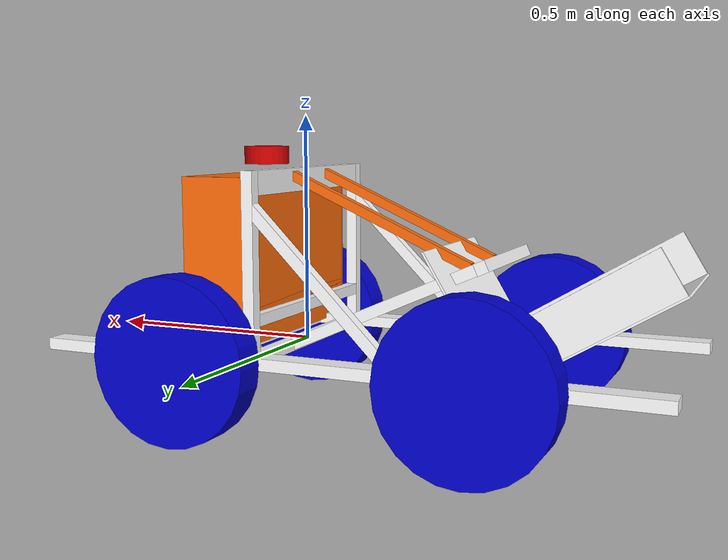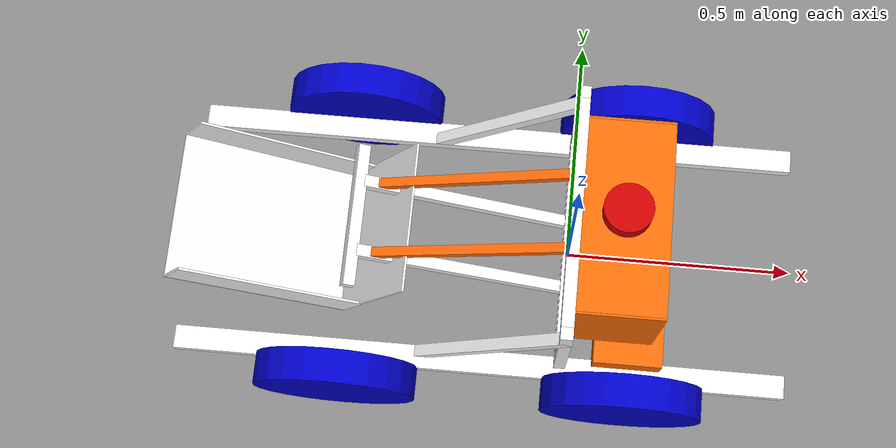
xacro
<?xml version="1.0"?>
<!-- Basic differential drive mobile base -->
<robot xmlns:xacro="http://www.ros.org/wiki/xacro" name="diffdrive_robot">
  <xacro:arg name="prefix" default="" />
  <xacro:arg name="sim_mode" default="false"/>
  <xacro:include filename="$(find ros_phoenix)/urdf/robot_core.urdf.xacro" />

  <!-- Import Rviz colors -->
  <xacro:include filename="$(find ros_phoenix)/urdf/diffbot.materials.xacro" />

  <!-- Import diffbot ros2_control description -->
  <xacro:include filename="$(find ros_phoenix)/ros2_control/diffbot.ros2_control.xacro" />

  <xacro:diffbot prefix="$(arg prefix)" />

  <xacro:diffbot_ros2_control
    name="DiffBot" prefix="$(arg prefix)"/>

</robot>

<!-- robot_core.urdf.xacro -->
<robot xmlns:xacro="http://www.ros.org/wiki/xacro" >
    <!-- the copy of robot_core_1 urdf -->
    <xacro:macro name="diffbot" params="prefix">
    <xacro:include filename="inertial_macros.xacro"/>
    <xacro:include filename="depth_camera.xacro"/>
    <xacro:include filename="lidar.xacro"/>

    <xacro:property name="chassis_length" value="1.3501" />
    <xacro:property name="chassis_to_base_link" value="0.4954" />
    <xacro:property name="profile_height" value="0.0254" />
    <xacro:property name="profile_width" value="0.0254" />
    <xacro:property name="tower_height" value="0.388" />

    <xacro:property name="wheel_radius" value="0.1778" />
    <xacro:property name="wheel_thickness" value="0.07" />
    <xacro:property name="wheel_mass" value="56" />

    <xacro:property name="front_wheel_offset_x" value="0.14" />
    <xacro:property name="back_wheel_offset_x" value="0.49" />

    <xacro:property name="wheel_offset_y" value="0.3182" />
    <xacro:property name="wheel_offset_z" value="0.1778" />
    <xacro:property name="caster_wheel_mass" value="56"/>

    <xacro:property name="double_prof_mass" value="0.235398773"/>
    <xacro:property name="single_prof_mass" value="0.147601476"/>
    <xacro:property name="spoke_mass" value="1.6"/>
    <xacro:property name="motorgearbox_mass" value="136"/>
    <xacro:property name="scoop_mass" value="196"/>
    <xacro:property name="tiltingact_mass" value="38"/>
    <xacro:property name="liftingact_mass" value="44"/>

    <!-- BASE LINK -->

    <link name="base_link">

    </link>

    <!-- BASE_FOOTPRINT LINK -->

    <joint name="base_footprint_joint" type="fixed">
    	<parent link="base_link"/>
    	<child link="base_footprint"/>
    	<origin xyz="0 0 0" rpy="0 0 0"/>
    </joint>

    <link name="base_footprint">
    </link>

    <joint name="imu_joint" type="fixed">
        <parent link="base_link" />
        <child link="imu_link" />
        <origin xyz="0.1919 0 ${0.2016+0.03}" rpy="0 0 0" />
    </joint>

    <link name="imu_link">
        <visual>
            <geometry>
                <box size="0.03 0.02 0.01"/>
            </geometry>
            <material name="orange"/>
        </visual>
    </link>

    <!-- CHASSIS LONG BASE LEFT -->
    <!-- Needs to be 1.35m long, to the left by 0.2604m -->

    <joint name="chassis_base_left" type="fixed">
        <parent link="base_link"/>
        <child link="chassis_base_left"/>
        <origin xyz="${chassis_to_base_link} -0.2604 0"/>
    </joint>

    <link name="chassis_base_left">
        <visual>
            <origin xyz="${-chassis_length/2} 0 0"/>
            <geometry>
                <box size="${chassis_length} 0.0508 ${profile_height}"/>
            </geometry>
            <material name="white"/>
        </visual>
        <collision>
            <origin xyz="${-chassis_length/2} 0 0"/>
            <geometry>
                <box size="${chassis_length} 0.0508 ${profile_height}"/>
            </geometry>
        </collision>
        <xacro:inertial_box mass="${double_prof_mass*chassis_length*100}" x="${-chassis_length}" y="0.0508" z="${profile_height}">
            <origin xyz="${chassis_length/2} 0 0" rpy="0 0 0"/>
        </xacro:inertial_box>
    </link>

    <gazebo reference="chassis_base_left">
        <material>Gazebo/White</material>
    </gazebo>

    <!-- CHASSIS LONG BASE RIGHT -->
    <!-- Needs to be 1.35m long, to the left by  -->

    <joint name="chassis_base_right" type="fixed">
        <parent link="base_link"/>
        <child link="chassis_base_right"/>
        <origin xyz="${chassis_to_base_link} 0.2604 0"/>
    </joint>

    <link name="chassis_base_right">
        <visual>
            <origin xyz="${-chassis_length/2} 0 0"/>
            <geometry>
                <box size="${chassis_length} 0.0508 ${profile_height}"/>
            </geometry>
            <material name="white"/>
        </visual>
        <collision>
            <origin xyz="${-chassis_length/2} 0 0"/>
            <geometry>
                <box size="${chassis_length} 0.0508 ${profile_height}"/>
            </geometry>
        </collision>
        <xacro:inertial_box mass="${double_prof_mass*chassis_length*100}" x="${-chassis_length}" y="0.0508" z="${profile_height}">
            <origin xyz="${chassis_length/2} 0 0" rpy="0 0 0"/>
        </xacro:inertial_box>
    </link>

    <gazebo reference="chassis_base_right">
        <material>Gazebo/White</material>
    </gazebo>

    <!-- TOWER BASE -->

    <joint name="tower_base_" type="fixed">
        <parent link="base_link"/>
        <child link="tower_base"/>
        <origin xyz="0 0 0"/>
    </joint>

    <link name="tower_base">
        <visual>
            <origin xyz="0 0 0"/>
            <geometry>
                <box size="${profile_width} 0.4702 ${profile_height}"/>
            </geometry>
            <material name="white"/>
        </visual>
        <collision>
            <origin xyz="0 0 0"/>
            <geometry>
                <box size="${profile_width} 0.4702 ${profile_height}"/>
            </geometry>
        </collision>
        <xacro:inertial_box mass="${single_prof_mass*47.02}" x="${profile_width}" y="0.4702" z="${profile_height}">
            <origin xyz="0 0 0" rpy="0 0 0"/>
        </xacro:inertial_box>
    </link>

    <gazebo reference="tower_base">
        <material>Gazebo/White</material>
    </gazebo>

    <!-- TOWER MIDDLE -->

    <joint name="tower_middle_" type="fixed">
        <parent link="base_link"/>
        <child link="tower_middle"/>
        <origin xyz="0 0 0.08"/>
    </joint>

    <link name="tower_middle">
        <visual>
            <origin xyz="0 0 0"/>
            <geometry>
                <box size="${profile_width} 0.4702 ${profile_height}"/>
            </geometry>
            <material name="white"/>
        </visual>
        <collision>
            <origin xyz="0 0 0"/>
            <geometry>
                <box size="${profile_width} 0.4702 ${profile_height}"/>
            </geometry>
        </collision>
        <xacro:inertial_box mass="${single_prof_mass*47.02}" x="${profile_width}" y="0.4702" z="${profile_height}">
            <origin xyz="0 0 0" rpy="0 0 0"/>
        </xacro:inertial_box>
    </link>

    <gazebo reference="tower_middle">
        <material>Gazebo/White</material>
    </gazebo>

    <!-- TOWER HEIGHT LEFT -->
    <!-- Needs to be 0.510m tall -->

    <joint name="tower_up_left" type="fixed">
        <parent link="base_link"/>
        <child link="tower_up_left"/>
        <origin xyz="0 -0.2478 0"/>
    </joint>

    <link name="tower_up_left">
        <visual>
            <origin xyz="0 0 ${tower_height/2}"/>
            <geometry>
                <box size="${profile_width} ${profile_width} ${tower_height}"/>
            </geometry>
            <material name="white"/>
        </visual>
        <collision>
            <origin xyz="0 0 ${tower_height/2}"/>
            <geometry>
                <box size="${profile_width} ${profile_width} ${tower_height}"/>
            </geometry>
        </collision>
        <xacro:inertial_box mass="${single_prof_mass*tower_height*100}" x="${profile_width}" y="${profile_width}" z="${tower_height}">
            <origin xyz="0 0 ${tower_height/2}" rpy="0 0 0"/>
        </xacro:inertial_box>
    </link>

    <gazebo reference="tower_up_left">
        <material>Gazebo/White</material>
    </gazebo>

    <!-- TOWER HEIGHT RIGHT-->
    <!-- Needs to be 0.510m tall -->

    <joint name="tower_up_right" type="fixed">
        <parent link="base_link"/>
        <child link="tower_up_right"/>
        <origin xyz="0 0.2478 0"/>
    </joint>

    <link name="tower_up_right">
        <visual>
            <origin xyz="0 0 ${tower_height/2}"/>
            <geometry>
                <box size="${profile_width} ${profile_width} ${tower_height}"/>
            </geometry>
            <material name="white"/>
        </visual>
        <collision>
            <origin xyz="0 0 ${tower_height/2}"/>
            <geometry>
                <box size="${profile_width} ${profile_width} ${tower_height}"/>
            </geometry>
        </collision>
        <xacro:inertial_box mass="${single_prof_mass*tower_height*100}" x="${profile_width}" y="${profile_width}" z="${tower_height}">
            <origin xyz="0 0 ${tower_height/2}" rpy="0 0 0"/>
        </xacro:inertial_box>
    </link>

    <gazebo reference="tower_up_right">
        <material>Gazebo/White</material>
    </gazebo>

    <!-- TOWER TOP -->
    <!-- Needs to be 0.510m tall -->

    <joint name="tower_top" type="fixed">
        <parent link="base_link"/>
        <child link="tower_top"/>
        <origin xyz="0 0 ${tower_height-profile_width}"/>
    </joint>

    <link name="tower_top">
        <visual>
            <origin xyz="0 0 0"/>
            <geometry>
                <box size="${profile_width} 0.4702 ${profile_height*2}"/>
            </geometry>
            <material name="white"/>
        </visual>
        <collision>
            <origin xyz="0 0 0"/>
            <geometry>
                <box size="${profile_width} 0.4702 ${profile_height*2}"/>
            </geometry>
        </collision>
        <xacro:inertial_box mass="${double_prof_mass*0.4702*100}" x="${profile_width}" y="0.4702" z="${profile_height*2}">
            <origin xyz="0 0 0" rpy="0 0 0"/>
        </xacro:inertial_box>
    </link>

    <!-- TOWER SUPPORT LEFT -->

    <joint name="tower_support_left" type="fixed">
        <parent link="base_link"/>
        <child link="tower_support_left"/>
        <origin xyz="-0.15635 -0.2478 0.160" rpy="0 ${-pi/4} 0"/>
        <axis xyz="1 0 0"/>
    </joint>

    <link name="tower_support_left">
        <visual>
            <origin xyz="0 0 0"/>
            <geometry>
                <box size="0.4572 ${profile_width} ${profile_height}"/>
            </geometry>
            <material name="white"/>
        </visual>
        <collision>
            <origin xyz="0 0 0"/>
            <geometry>
                <box size="0.4572 ${profile_width} ${profile_height}"/>
            </geometry>
        </collision>
        <xacro:inertial_box mass="${single_prof_mass*0.4572*100}" x="0.4572" y="${profile_width}" z="${profile_height}">
            <origin xyz="0 0 0" rpy="0 0 0"/>
        </xacro:inertial_box>
    </link>

    <gazebo reference="tower_support_left">
        <material>Gazebo/White</material>
    </gazebo>

    <!-- TOWER SUPPORT RIGHT -->

    <joint name="tower_support_right" type="fixed">
        <parent link="base_link"/>
        <child link="tower_support_right"/>
        <origin xyz="-0.15635 0.2478 0.160" rpy="0 ${-pi/4} 0"/>
        <axis xyz="1 0 0"/>
    </joint>

    <link name="tower_support_right">
        <visual>
            <origin xyz="0 0 0"/>
            <geometry>
                <box size="0.4572 ${profile_width} ${profile_height}"/>
            </geometry>
            <material name="white"/>
        </visual>
        <collision>
            <origin xyz="0 0 0"/>
            <geometry>
                <box size="0.4572 ${profile_width} ${profile_height}"/>
            </geometry>
        </collision>
        <xacro:inertial_box mass="${single_prof_mass*0.4572*100}" x="0.4572" y="${profile_width}" z="${profile_height}">
            <origin xyz="0 0 0" rpy="0 0 0"/>
        </xacro:inertial_box>
    </link>

    <gazebo reference="tower_support_right">
        <material>Gazebo/White</material>
    </gazebo>

    <!-- MOTOR BASE FRONT -->

    <joint name="motor_base_front" type="fixed">
        <parent link="base_link"/>
        <child link="motor_base_front"/>
        <origin xyz="0.1 0 0"/>
    </joint>

    <link name="motor_base_front">
        <visual>
            <origin xyz="0 0 0"/>
            <geometry>
                <box size="${profile_width} 0.4702 ${profile_height}"/>
            </geometry>
            <material name="white"/>
        </visual>
        <collision>
            <origin xyz="0 0 0"/>
            <geometry>
                <box size="${profile_width} 0.4702 ${profile_height}"/>
            </geometry>
        </collision>
        <xacro:inertial_box mass="${single_prof_mass*0.4702*100}" x="${profile_width}" y="0.4702" z="${profile_height}">
            <origin xyz="0 0 0" rpy="0 0 0"/>
        </xacro:inertial_box>
    </link>

    <gazebo reference="motor_base_front">
        <material>Gazebo/White</material>
    </gazebo>

    <!-- MOTOR BASE BACK -->

    <joint name="motor_base_back" type="fixed">
        <parent link="base_link"/>
        <child link="motor_base_back"/>
        <origin xyz="0.175 0 0"/>
    </joint>

    <link name="motor_base_back">
        <visual>
            <origin xyz="0 0 0"/>
            <geometry>
                <box size="${profile_width} 0.4702 ${profile_height}"/>
            </geometry>
            <material name="white"/>
        </visual>
        <collision>
            <origin xyz="0 0 0"/>
            <geometry>
                <box size="${profile_width} 0.4702 ${profile_height}"/>
            </geometry>
        </collision>
        <xacro:inertial_box mass="${single_prof_mass*0.4702*100}" x="${profile_width}" y="0.4702" z="${profile_height}">
            <origin xyz="0 0 0" rpy="0 0 0"/>
        </xacro:inertial_box>
    </link>

    <gazebo reference="motor_base_back">
        <material>Gazebo/White</material>
    </gazebo>

     <!-- DOSER PROFILE LEFT -->

     <joint name="doser_profile_left" type="fixed">
        <parent link="base_link"/>
        <child link="doser_profile_left"/>
        <origin xyz="-0.2286 -0.0760254 0.1" rpy="0 ${pi/7.5} 0"/>
        <axis xyz="1 0 0"/>
    </joint>

    <link name="doser_profile_left">
        <visual>
            <origin xyz="0 0 0"/>
            <geometry>
                <box size="0.490 ${profile_width} ${profile_height}"/>
            </geometry>
            <material name="white"/>
        </visual>
        <collision>
            <origin xyz="0 0 0"/>
            <geometry>
                <box size="0.490 ${profile_width} ${profile_height}"/>
            </geometry>
        </collision>
        <xacro:inertial_box mass="${single_prof_mass*0.490*100}" x="0.490" y="${profile_width}" z="${profile_height}">
            <origin xyz="0 0 0" rpy="0 0 0"/>
        </xacro:inertial_box>
    </link>

    <gazebo reference="doser_profile_left">
        <material>Gazebo/White</material>
    </gazebo>

    <!-- DOSER PROFILE RIGHT -->

    <joint name="doser_profile_right" type="fixed">
        <parent link="base_link"/>
        <child link="doser_profile_right"/>
        <origin xyz="-0.2286 0.0760254 0.1" rpy="0 ${pi/7.5} 0"/>
        <axis xyz="1 0 0"/>
    </joint>

    <link name="doser_profile_right">
        <visual>
            <origin xyz="0 0 0"/>
            <geometry>
                <box size="0.490 ${profile_width} ${profile_height}"/>
            </geometry>
            <material name="white"/>
        </visual>
        <collision>
            <origin xyz="0 0 0"/>
            <geometry>
                <box size="0.490 ${profile_width} ${profile_height}"/>
            </geometry>
        </collision>
        <xacro:inertial_box mass="${single_prof_mass*0.490*100}" x="0.490" y="${profile_width}" z="${profile_height}">
            <origin xyz="0 0 0" rpy="0 0 0"/>
        </xacro:inertial_box>
    </link>

    <gazebo reference="doser_profile_right">
        <material>Gazebo/White</material>
    </gazebo>

    <!-- DOSER PROFILE CONNECTION TOP -->

    <joint name="doser_profile_top" type="fixed">
        <parent link="base_link"/>
        <child link="doser_profile_top"/>
        <origin xyz="-0.4596 0 0.20245" rpy="0 ${pi/7.5} 0"/>
        <axis xyz="1 0 0"/>
    </joint>

    <link name="doser_profile_top">
        <visual>
            <origin xyz="0 0 0"/>
            <geometry>
                <box size="${profile_width} 0.3075 ${profile_height}"/>
            </geometry>
            <material name="white"/>
        </visual>
        <collision>
            <origin xyz="0 0 0"/>
            <geometry>
                <box size="${profile_width} 0.3075 ${profile_height}"/>
            </geometry>
        </collision>
        <xacro:inertial_box mass="${single_prof_mass*0.3075*100}" x="${profile_width}" y="0.3075" z="${profile_height}">
            <origin xyz="0 0 0" rpy="0 0 0"/>
        </xacro:inertial_box>
    </link>

    <gazebo reference="doser_profile_top">
        <material>Gazebo/White</material>
    </gazebo>

    <!-- MOTOR AND GEARBOX LINK -->

    <joint name="motor_joint" type="fixed">
        <parent link="base_link"/>
        <child link="motor"/>
        <origin xyz="0.145 0 0"/>
    </joint>

    <link name="motor">
        <visual>
            <origin xyz="0 0 0.0375"/>
            <geometry>
                <box size="0.15 0.5 0.075"/>
            </geometry>
            <material name="orange"/>
        </visual>
        <collision>
            <origin xyz="0 0 0.0375"/>
            <geometry>
                <box size="0.15 0.5 0.075"/>
            </geometry>
        </collision>
        <xacro:inertial_box mass="${motorgearbox_mass}" x="0.15" y="0.5" z="0.075">
            <origin xyz="0 0 0.0375" rpy="0 0 0"/>
        </xacro:inertial_box>
    </link>

    <gazebo reference="motor">
        <material>Gazebo/Orange</material>
    </gazebo>

    <!-- FRONT LEFT WHEEL LINK -->

    <joint name="left_wheel_joint" type="continuous">
        <parent link="base_link"/>
        <child link="left_wheel"/>
        <origin xyz="${front_wheel_offset_x} ${wheel_offset_y} 0" rpy="-${pi/2} 0 0" />
        <axis xyz="0 0 1"/>
    </joint>

    <link name="left_wheel">
        <visual>
            <geometry>
                <cylinder radius="${wheel_radius}" length="${wheel_thickness}"/>
            </geometry>
            <material name="blue"/>
        </visual>
        <collision>
            <geometry>
                <sphere radius="${wheel_radius}"/>
            </geometry>
            <surface>
                <friction>
                    <torsional>
                        <coefficient>=0.5</coefficient>
                        <use_patch_radius>false</use_patch_radius>
                        <surface_radius>${wheel_radius}</surface_radius>
                    </torsional>
                </friction>
            </surface>
        </collision>
        <xacro:inertial_cylinder mass="${wheel_mass}" length="${wheel_thickness}" radius="${wheel_radius}">
            <origin xyz="0 0 0" rpy="0 0 0"/>
        </xacro:inertial_cylinder>
    </link>

    <gazebo reference="left_wheel">
        <material>Gazebo/Blue</material>
    </gazebo>

    <!-- FRONT RIGHT WHEEL LINK -->

    <joint name="right_wheel_joint" type="continuous">
        <parent link="base_link"/>
        <child link="right_wheel"/>
        <origin xyz="${front_wheel_offset_x} -${wheel_offset_y} 0" rpy="${pi/2} 0 0" />
        <axis xyz="0 0 -1"/>
    </joint>

    <link name="right_wheel">
        <visual>
            <geometry>
                <cylinder radius="${wheel_radius}" length="${wheel_thickness}"/>
            </geometry>
            <material name="blue"/>
        </visual>
        <collision>
            <geometry>
                <sphere radius="${wheel_radius}"/>
            </geometry>
            <surface>
                <friction>
                    <torsional>
                        <coefficient>0.5</coefficient>
                        <use_patch_radius>false</use_patch_radius>
                        <surface_radius>${wheel_radius}</surface_radius>
                    </torsional>
                </friction>
            </surface>
        </collision>
        <xacro:inertial_cylinder mass="${wheel_mass}" length="${wheel_thickness}" radius="${wheel_radius}">
            <origin xyz="0 0 0" rpy="0 0 0"/>
        </xacro:inertial_cylinder>
    </link>

    <gazebo reference="right_wheel">
        <material>Gazebo/Blue</material>
    </gazebo>

    <!-- BACK LEFT WHEEL LINK -->

    <joint name="back_left_wheel_joint" type="fixed">
        <parent link="base_link"/>
        <child link="back_left_wheel"/>
        <origin xyz="-${back_wheel_offset_x} -${wheel_offset_y} 0" rpy="-${pi/2} 0 0" />
        <axis xyz="0 0 1"/>
    </joint>

    <link name="back_left_wheel">
        <visual>
            <geometry>
                <cylinder radius="${wheel_radius}" length="${wheel_thickness}"/>
            </geometry>
            <material name="blue"/>
        </visual>
        <collision>
            <geometry>
                <sphere radius="${wheel_radius}"/>
            </geometry>
            <torsional>
                <coefficient>0.5</coefficient>
                <use_patch_radius>false</use_patch_radius>
                <surface_radius>${wheel_radius}</surface_radius>
            </torsional>
        </collision>
        <xacro:inertial_cylinder mass="${caster_wheel_mass}" length="${wheel_thickness}" radius="${wheel_radius}">
            <origin xyz="0 0 0" rpy="0 0 0"/>
        </xacro:inertial_cylinder>
    </link>

    <gazebo reference="back_left_wheel">
        <material>Gazebo/Blue</material>
        <mu1 value="0.001"/>
        <mu2 value="0.001"/>
    </gazebo>

    <!-- BACK RIGHT WHEEL LINK -->

    <joint name="back_right_wheel_joint" type="fixed">
        <parent link="base_link"/>
        <child link="back_right_wheel"/>
        <origin xyz="-${back_wheel_offset_x} ${wheel_offset_y} 0" rpy="${pi/2} 0 0" />
        <axis xyz="0 0 -1"/>
    </joint>

    <link name="back_right_wheel">
        <visual>
            <geometry>
                <cylinder radius="${wheel_radius}" length="${wheel_thickness}"/>
            </geometry>
            <material name="blue"/>
        </visual>
        <collision>
            <geometry>
                <sphere radius="${wheel_radius}"/>
            </geometry>
            <torsional>
                <coefficient>0.5</coefficient>
                <use_patch_radius>false</use_patch_radius>
                <surface_radius>${wheel_radius}</surface_radius>
            </torsional>
        </collision>
        <xacro:inertial_cylinder mass="${caster_wheel_mass}" length="${wheel_thickness}" radius="${wheel_radius}">
            <origin xyz="0 0 0" rpy="0 0 0"/>
        </xacro:inertial_cylinder>
    </link>

    <gazebo reference="back_right_wheel">
        <material>Gazebo/Blue</material>
        <mu1 value="0.001"/>
        <mu2 value="0.001"/>
    </gazebo>

    <!-- DOZER -->

    <joint name="Dozer_left" type="fixed">
        <parent link="base_link"/>
        <child link="doser_left"/>
        <origin xyz="-0.647 -0.1587525 0.11" rpy="0 ${pi/5.81} 0"/>
        <axis xyz="1 0 0"/>
    </joint>

    <link name="doser_left">
        <visual>
            <origin xyz="0 0 0"/>
            <geometry>
                <box size="0.4153 0.005 0.1"/>
            </geometry>
            <material name="white"/>
        </visual>
        <collision>
            <origin xyz="0 0 0"/>
            <geometry>
                <box size="0.4153 0.005 0.1"/>
            </geometry>
        </collision>
        <xacro:inertial_box mass="49" x="0.4153" y="0.005" z="0.1">
            <origin xyz="0 0 0" rpy="0 0 0"/>
        </xacro:inertial_box>
    </link>

    <gazebo reference="doser_left">
        <material>Gazebo/White</material>
    </gazebo>

    <joint name="Dozer_right" type="fixed">
        <parent link="base_link"/>
        <child link="doser_right"/>
        <origin xyz="-0.647 0.1587525 0.11" rpy="0 ${pi/5.81} 0"/>
        <axis xyz="1 0 0"/>
    </joint>

    <link name="doser_right">
        <visual>
            <origin xyz="0 0 0"/>
            <geometry>
                <box size="0.4153 0.005 0.1"/>
            </geometry>
            <material name="white"/>
        </visual>
        <collision>
            <origin xyz="0 0 0"/>
            <geometry>
                <box size="0.4153 0.005 0.1"/>
            </geometry>
        </collision>
        <xacro:inertial_box mass="49" x="0.4153" y="0.005" z="0.1">
            <origin xyz="0 0 0" rpy="0 0 0"/>
        </xacro:inertial_box>
    </link>

    <gazebo reference="doser_right">
        <material>Gazebo/White</material>
    </gazebo>

    <joint name="Dozer_back" type="fixed">
        <parent link="base_link"/>
        <child link="doser_back"/>
        <origin xyz="-0.4205 0 0.095" rpy="0 ${pi/5.81} 0"/>
        <axis xyz="1 0 0"/>
    </joint>

    <link name="doser_back">
        <visual>
            <origin xyz="0 0 0"/>
            <geometry>
                <box size="0.005 0.3225 0.312"/>
            </geometry>
            <material name="white"/>
        </visual>
        <collision>
            <origin xyz="0 0 0"/>
            <geometry>
                <box size="0.005 0.3225 0.312"/>
            </geometry>
        </collision>
        <xacro:inertial_box mass="49" x="0.005" y="0.3225" z="0.312">
            <origin xyz="0 0 0" rpy="0 0 0"/>
        </xacro:inertial_box>
    </link>

    <gazebo reference="doser_back">
        <material>Gazebo/White</material>
    </gazebo>

    <joint name="Dozer_base" type="fixed">
        <parent link="base_link"/>
        <child link="doser_base"/>
        <origin xyz="-0.675 0 0.066" rpy="0 ${pi/5.81} 0"/>
        <axis xyz="1 0 0"/>
    </joint>

    <link name="doser_base">
        <visual>
            <origin xyz="0 0 0"/>
            <geometry>
                <box size="0.4153 0.3225 0.005"/>
            </geometry>
            <material name="white"/>
        </visual>
        <collision>
            <origin xyz="0 0 0"/>
            <geometry>
                <box size="0.4153 0.3225 0.005"/>
            </geometry>
        </collision>
        <xacro:inertial_box mass="49" x="0.4153" y="0.3225" z="0.005">
            <origin xyz="0 0 0" rpy="0 0 0"/>
        </xacro:inertial_box>
    </link>

    <gazebo reference="doser_base">
        <material>Gazebo/White</material>
    </gazebo>

    <!-- LIFTING ACTUATOR LEFT -->
    <xacro:property name="actuator_fixed_length" value="0.4575" />
    <xacro:property name="actuator_extension_length" value="0.2" />
    <xacro:property name="actuator_radius" value="0.02" />

    <!-- FIXED PART -->
    <joint name="actuator_left_joint" type="fixed">
        <parent link="base_link"/>
        <child link="actuator_left"/>
        <origin xyz="-0.205 -0.0760254 0.285" rpy="0 -${pi/7.5} 0"/>
        <axis xyz="1 0 0"/>
    </joint>

    <link name="actuator_left">
        <visual>
            <origin xyz="0 0 0"/>
            <geometry>
                <box size="${actuator_fixed_length} ${actuator_radius} ${actuator_radius}"/>
            </geometry>
            <material name="orange"/>
        </visual>
        <collision>
            <origin xyz="0 0 0"/>
            <geometry>
                <box size="${actuator_fixed_length} ${actuator_radius} ${actuator_radius}"/>
            </geometry>
        </collision>
        <xacro:inertial_box mass="0.44" x="${actuator_fixed_length}" y="${actuator_radius}" z="${actuator_radius}">
            <origin xyz="0 0 0" rpy="0 0 0"/>
        </xacro:inertial_box>
    </link>

    <gazebo reference="actuator_left">
        <material>Gazebo/Orange</material>
    </gazebo>

    <!-- LIFTING ACTUATOR RIGHT -->

    <!-- FIXED PART -->
    <joint name="actuator_right_joint" type="fixed">
        <parent link="base_link"/>
        <child link="actuator_right"/>
        <origin xyz="-0.205 0.0760254 0.285" rpy="0 -${pi/7.5} 0"/>
        <axis xyz="1 0 0"/>
    </joint>

    <link name="actuator_right">
        <visual>
            <origin xyz="0 0 0"/>
            <geometry>
                <box size="${actuator_fixed_length} ${actuator_radius} ${actuator_radius}"/>
            </geometry>
            <material name="orange"/>
        </visual>
        <collision>
            <origin xyz="0 0 0"/>
            <geometry>
                <box size="${actuator_fixed_length} ${actuator_radius} ${actuator_radius}"/>
            </geometry>
        </collision>
        <xacro:inertial_box mass="0.44" x="${actuator_fixed_length}" y="${actuator_radius}" z="${actuator_radius}">
            <origin xyz="0 0 0" rpy="0 0 0"/>
        </xacro:inertial_box>
    </link>

    <gazebo reference="actuator_right">
        <material>Gazebo/Orange</material>
    </gazebo>

    <!-- ELECTRICAL BOX -->

    <joint name="elec_box_base" type="fixed">
        <parent link="base_link"/>
        <child link="elec_base"/>
        <origin xyz="0.10045 0 0.1"/>
    </joint>

    <link name="elec_base">
        <visual>
            <origin xyz="0 0 0"/>
            <geometry>
                <box size="0.1829 0.3988 0.019"/>
            </geometry>
            <material name="orange"/>
        </visual>
        <collision>
            <origin xyz="0 0 0"/>
            <geometry>
                <box size="0.1829 0.3988 0.019"/>
            </geometry>
        </collision>
        <xacro:inertial_box mass="20" x="0.1829" y="0.3988" z="0.019">
            <origin xyz="0 0 0" rpy="0 0 0"/>
        </xacro:inertial_box>
    </link>

    <gazebo reference="elec_base">
        <material>Gazebo/White</material>
    </gazebo>

    <joint name="elec_box_top" type="fixed">
        <parent link="base_link"/>
        <child link="elec_top"/>
        <origin xyz="0.10045 0 0.3616"/>
    </joint>

    <link name="elec_top">
        <visual>
            <origin xyz="0 0 0"/>
            <geometry>
                <box size="0.1829 0.3988 0.019"/>
            </geometry>
            <material name="orange"/>
        </visual>
        <collision>
            <origin xyz="0 0 0"/>
            <geometry>
                <box size="0.1829 0.3988 0.019"/>
            </geometry>
        </collision>
        <xacro:inertial_box mass="20" x="0.1829" y="0.3988" z="0.019">
            <origin xyz="0 0 0" rpy="0 0 0"/>
        </xacro:inertial_box>
    </link>

    <gazebo reference="elec_top">
        <material>Gazebo/White</material>
    </gazebo>

    <joint name="elec_box_left" type="fixed">
        <parent link="base_link"/>
        <child link="elec_left"/>
        <origin xyz="0.10045 -0.1995 0.23095"/>
    </joint>

    <link name="elec_left">
        <visual>
            <origin xyz="0 0 0"/>
            <geometry>
                <box size="0.1829 0.009 0.28"/>
            </geometry>
            <material name="orange"/>
        </visual>
        <collision>
            <origin xyz="0 0 0"/>
            <geometry>
                <box size="0.1829 0.009 0.28"/>
            </geometry>
        </collision>
        <xacro:inertial_box mass="20" x="0.1829" y="0.009" z="0.28">
            <origin xyz="0 0 0" rpy="0 0 0"/>
        </xacro:inertial_box>
    </link>

    <gazebo reference="elec_left">
        <material>Gazebo/White</material>
    </gazebo>

    <joint name="elec_box_right" type="fixed">
        <parent link="base_link"/>
        <child link="elec_right"/>
        <origin xyz="0.10045 0.1995 0.23095"/>
    </joint>

    <link name="elec_right">
        <visual>
            <origin xyz="0 0 0"/>
            <geometry>
                <box size="0.1829 0.009 0.28"/>
            </geometry>
            <material name="orange"/>
        </visual>
        <collision>
            <origin xyz="0 0 0"/>
            <geometry>
                <box size="0.1829 0.009 0.28"/>
            </geometry>
        </collision>
        <xacro:inertial_box mass="20" x="0.1829" y="0.009" z="0.28">
            <origin xyz="0 0 0" rpy="0 0 0"/>
        </xacro:inertial_box>
    </link>

    <gazebo reference="elec_right">
        <material>Gazebo/White</material>
    </gazebo>

    <joint name="elec_box_back" type="fixed">
        <parent link="base_link"/>
        <child link="elec_back"/>
        <origin xyz="0.0135 0 0.23095"/>
    </joint>

    <link name="elec_back">
        <visual>
            <origin xyz="0 0 0"/>
            <geometry>
                <box size="0.009 0.3988 0.28"/>
            </geometry>
            <material name="orange"/>
        </visual>
        <collision>
            <origin xyz="0 0 0"/>
            <geometry>
                <box size="0.009 0.3988 0.28"/>
            </geometry>
        </collision>
        <xacro:inertial_box mass="20" x="0.009" y="0.3988" z="0.28">
            <origin xyz="0 0 0" rpy="0 0 0"/>
        </xacro:inertial_box>
    </link>

    <gazebo reference="elec_back">
        <material>Gazebo/White</material>
    </gazebo>

    <gazebo reference="actuator_right">
        <material>Gazebo/Orange</material>
    </gazebo>

    </xacro:macro>

</robot>

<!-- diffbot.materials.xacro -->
<!--
Copied from ROS1 example:
https://github.com/ros-simulation/gazebo_ros_demos/blob/kinetic-devel/rrbot_description/urdf/materials.xacro
-->
<robot>

  <material name="black">
    <color rgba="0.0 0.0 0.0 1.0"/>
  </material>

  <material name="blue">
    <color rgba="0.0 0.0 0.8 1.0"/>
  </material>

  <material name="green">
    <color rgba="0.0 0.8 0.0 1.0"/>
  </material>

  <material name="grey">
    <color rgba="0.2 0.2 0.2 1.0"/>
  </material>

  <material name="orange">
    <color rgba="${255/255} ${108/255} ${10/255} 1.0"/>
  </material>

  <material name="brown">
    <color rgba="${222/255} ${207/255} ${195/255} 1.0"/>
  </material>

  <material name="red">
    <color rgba="0.8 0.0 0.0 1.0"/>
  </material>

  <material name="white">
    <color rgba="1.0 1.0 1.0 1.0"/>
  </material>

</robot>

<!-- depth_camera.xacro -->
<robot xmlns:xacro="http://www.ros.org/wiki/xacro" >
    <xacro:property name="chassis_length" value="1.3501" />
    <xacro:property name="chassis_to_base_link" value="0.4954" />
    <xacro:property name="profile_height" value="0.0254" />
    <xacro:property name="profile_width" value="0.0254" />
    <xacro:property name="tower_height" value="0.388" />

    <xacro:property name="wheel_radius" value="0.1778" />
    <xacro:property name="wheel_thickness" value="0.07" />
    <xacro:property name="wheel_mass" value="56" />

    <xacro:property name="front_wheel_offset_x" value="0.14" />
    <xacro:property name="back_wheel_offset_x" value="0.49" />

    <xacro:property name="wheel_offset_y" value="0.3182" />
    <xacro:property name="wheel_offset_z" value="0.1778" />
    <xacro:property name="caster_wheel_mass" value="56"/>

    <xacro:property name="double_prof_mass" value="0.235398773"/>
    <xacro:property name="single_prof_mass" value="0.147601476"/>
    <xacro:property name="spoke_mass" value="1.6"/>
    <xacro:property name="motorgearbox_mass" value="136"/>
    <xacro:property name="scoop_mass" value="196"/>
    <xacro:property name="tiltingact_mass" value="38"/>
    <xacro:property name="liftingact_mass" value="44"/>

    <joint name="camera_joint" type="fixed">
        <parent link="base_link"/>
        <child link="camera_link"/>
        <origin xyz="0.1919 0 0.2016" rpy="0 0 0"/>
    </joint>

    <link name="camera_link">
        <visual>
            <geometry>
                <box size="0.010 0.03 0.03"/>
            </geometry>
            <material name="red"/>
        </visual>
    </link>

    <joint name="camera_optical_joint" type="fixed">
        <parent link="camera_link"/>
        <child link="camera_link_optical"/>
        <origin xyz="0 0 0" rpy="${-pi/2} 0 ${-pi/2}"/>
    </joint>

    <link name="camera_link_optical"></link>

    <gazebo reference="camera_link">
        <material>Gazebo/Red</material>

        <sensor name="depth_camera" type="depth">
            <pose> 0 0 0 0 0 0 </pose>
            <visualize>true</visualize>
            <update_rate>10</update_rate>
            <camera>
                <horizontal_fov>1.089</horizontal_fov>
                <image>
                    <format>B8G8R8</format>
                    <width>640</width>
                    <height>480</height>
                </image>
                <clip>
                    <near>0.05</near>
                    <far>8.0</far>
                </clip>
            </camera>
            <plugin name="camera_controller" filename="libgazebo_ros_camera.so">
                <frame_name>camera_link_optical</frame_name>
                <min_depth>0.1</min_depth>
                <max_depth>100</max_depth>
            </plugin>
        </sensor>
    </gazebo>

</robot>

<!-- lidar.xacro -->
<robot xmlns:xacro="http://www.ros.org/wiki/xacro" >

    <xacro:property name="chassis_length" value="1.3501" />
    <xacro:property name="chassis_to_base_link" value="0.4954" />
    <xacro:property name="profile_height" value="0.0254" />
    <xacro:property name="profile_width" value="0.0254" />
    <xacro:property name="tower_height" value="0.388" />

    <xacro:property name="wheel_radius" value="0.1778" />
    <xacro:property name="wheel_thickness" value="0.07" />
    <xacro:property name="wheel_mass" value="56" />

    <xacro:property name="front_wheel_offset_x" value="0.14" />
    <xacro:property name="back_wheel_offset_x" value="0.49" />

    <xacro:property name="wheel_offset_y" value="0.3182" />
    <xacro:property name="wheel_offset_z" value="0.1778" />
    <xacro:property name="caster_wheel_mass" value="56"/>

    <xacro:property name="double_prof_mass" value="0.235398773"/>
    <xacro:property name="single_prof_mass" value="0.147601476"/>
    <xacro:property name="spoke_mass" value="1.6"/>
    <xacro:property name="motorgearbox_mass" value="136"/>
    <xacro:property name="scoop_mass" value="196"/>
    <xacro:property name="tiltingact_mass" value="38"/>
    <xacro:property name="liftingact_mass" value="44"/>

    <joint name="laser_joint" type="fixed">
        <parent link="base_link"/>
        <child link="laser_frame"/>
        <origin xyz="0.10045 0 ${tower_height-profile_width +profile_height*2 }" rpy="0 0 0"/>
    </joint>

    <link name="laser_frame">
        <visual>
            <geometry>
                <cylinder radius="0.05" length="0.04"/>
            </geometry>
            <material name="red"/>
        </visual>
        <collision>
            <geometry>
                <cylinder radius="0.05" length="0.04"/>
            </geometry>
        </collision>
        <xacro:inertial_cylinder mass="0.1" length="0.04" radius="0.05">
            <origin xyz="0 0 0" rpy="0 0 0"/>
        </xacro:inertial_cylinder>1
    </link>

    <gazebo reference="laser_frame">
        <material>Gazebo/Red</material>

        <sensor name="laser" type="ray">
            <pose> 0 0 0 0 0 0 </pose>
            <visualize>false</visualize>
            <update_rate>10</update_rate>
            <ray>
                <scan>
                    <horizontal>
                        <samples>360</samples>
                        <min_angle>-3.14</min_angle>
                        <max_angle>3.14</max_angle>
                    </horizontal>
                </scan>
                <range>
                    <min>0.3</min>
                    <max>12</max>
                </range>
            </ray>
            <plugin name="laser_controller" filename="libgazebo_ros_ray_sensor.so">
                <ros>
                    <argument>~/out:=scan</argument>
                </ros>
                <output_type>sensor_msgs/LaserScan</output_type>
                <frame_name>laser_frame</frame_name>
            </plugin>
        </sensor>
    </gazebo>

</robot>
